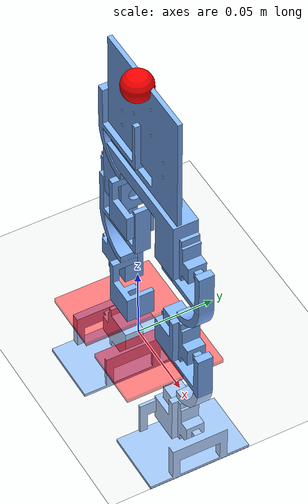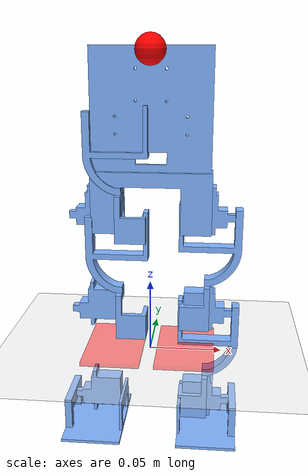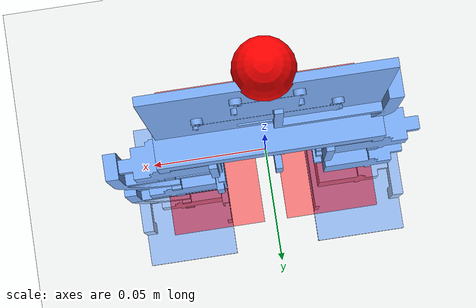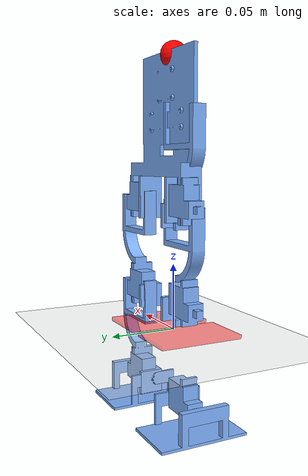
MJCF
<?xml version="1.0" ?>
<mujoco model="assemblyDerived_v9">
  <default>
    <mesh scale="0.001 0.001 0.001"/>
    <geom rgba="0.5 0.7 1.0 1" contype="0" conaffinity="0"/>
    <joint damping="0.005"/>
    <position kp="0.2" forcelimited="true" forcerange="-0.2 0.2"/>
  </default>

  <asset>
    <mesh file="meshes/derivedBody_v1_1.stl" name="derivedBody_v1_1_mesh"/>
    <mesh file="meshes/servo_v9_1.stl" name="servo_v9_1_mesh"/>
    <mesh file="meshes/derivedLeg_v1_1.stl" name="derivedLeg_v1_1_mesh"/>
    <mesh file="meshes/servo_v9_3.stl" name="servo_v9_3_mesh"/>
    <mesh file="meshes/derivedLeg_v1_2.stl" name="derivedLeg_v1_2_mesh"/>
    <mesh file="meshes/servo_v9_5.stl" name="servo_v9_5_mesh"/>
    <mesh file="meshes/derivedFoot_v2_1.stl" name="derivedFoot_v2_1_mesh"/>
    <mesh file="meshes/servo_v9_2.stl" name="servo_v9_2_mesh"/>
    <mesh file="meshes/derivedLeg_v1(Mirror)_1.stl" name="derivedLeg_v1(Mirror)_1_mesh"/>
    <mesh file="meshes/servo_v9_4.stl" name="servo_v9_4_mesh"/>
    <mesh file="meshes/derivedLeg_v1(Mirror)_2.stl" name="derivedLeg_v1(Mirror)_2_mesh"/>
    <mesh file="meshes/servo_v9_6.stl" name="servo_v9_6_mesh"/>
    <mesh file="meshes/derivedFoot_v2(Mirror)_1.stl" name="derivedFoot_v2(Mirror)_1_mesh"/>
  </asset>

  <actuator>
    <position name="derivedLeg_v1_1Revolute_3" joint="derivedLeg_v1_1Revolute_3" ctrllimited="true" ctrlrange="-1.57 1.57"/>
    <position name="derivedLeg_v1_2Revolute_7" joint="derivedLeg_v1_2Revolute_7" ctrllimited="true" ctrlrange="-1.57 1.57"/>
    <position name="derivedFoot_v2_1Revolute_11" joint="derivedFoot_v2_1Revolute_11" ctrllimited="true" ctrlrange="-1.57 1.57"/>
    <position name="derivedLeg_v1(Mirror)_1Revolute_4" joint="derivedLeg_v1(Mirror)_1Revolute_4" ctrllimited="true" ctrlrange="-1.57 1.57"/>
    <position name="derivedLeg_v1(Mirror)_2Revolute_8" joint="derivedLeg_v1(Mirror)_2Revolute_8" ctrllimited="true" ctrlrange="-1.57 1.57"/>
    <position name="derivedFoot_v2(Mirror)_1Revolute_12" joint="derivedFoot_v2(Mirror)_1Revolute_12" ctrllimited="true" ctrlrange="-1.57 1.57"/>
  </actuator>

  <sensor>
    <gyro name="gyro" site="imu_site"/>
    <accelerometer name="accel" site="imu_site"/>
    <framequat name="orientation" objtype="site" objname="imu_site"/>
  </sensor>

  <worldbody>
    <geom name="floor" size="0 0 .05" type="plane" condim="4" rgba="0.9 0.9 0.9 1" contype="1" conaffinity="1"/>
    <light mode="targetbodycom" target="body" diffuse=".8 .8 .8" specular="0.3 0.3 0.3" pos="0 -6 4" cutoff="30"/>

    <body name="body" pos="0 0 0.084">
      <freejoint name="root"/>
      <site name="imu_site" pos="0 0 0.12" size="0.01" rgba="1 0 0 1"/>
      <geom density="248" type="mesh" mesh="derivedBody_v1_1_mesh"/>

      <body name="servo_v9_1">
        <geom mass="0.013" type="mesh" mesh="servo_v9_1_mesh"/>
        <body name="derivedLeg_v1_1">
          <joint axis="1 0 0" name="derivedLeg_v1_1Revolute_3" type="hinge" pos="-0.0399 0.0043 0.0756" range="-1.57 1.57"/>
          <geom density="248" type="mesh" mesh="derivedLeg_v1_1_mesh"/>
          <body name="servo_v9_3">
            <geom mass="0.013" type="mesh" mesh="servo_v9_3_mesh"/>
            <body name="derivedLeg_v1_2">
              <joint axis="1 0 0" name="derivedLeg_v1_2Revolute_7" type="hinge" pos="-0.0399 0.0043 0.0056" range="-1.57 1.57"/>
              <geom density="248" type="mesh" mesh="derivedLeg_v1_2_mesh"/>
              <body name="servo_v9_5">
                <geom mass="0.013" type="mesh" mesh="servo_v9_5_mesh"/>
                <body name="derivedFoot_v2_1">
                  <joint axis="1 0 0" name="derivedFoot_v2_1Revolute_11" type="hinge" pos="-0.0399 0.0043 -0.0644" range="-1.57 1.57"/>
                  <geom density="248" type="mesh" mesh="derivedFoot_v2_1_mesh"/>
                  <geom type="box"  pos="-0.025 0.0 -0.0829" size="0.02 0.032 0.0015" rgba="1 0 0 0.5" contype="1" conaffinity="1" density="248" friction="1 0.2 0.001" solref="0.02 1"/>
                </body>
              </body>
            </body>
          </body>
        </body>
      </body>

      <body name="servo_v9_2">
        <geom mass="0.013" type="mesh" mesh="servo_v9_2_mesh"/>
        <body name="derivedLeg_v1(Mirror)_1">
          <joint axis="1 0 0" name="derivedLeg_v1(Mirror)_1Revolute_4" type="hinge" pos="0.0399 0.0043 0.0756" range="-1.57 1.57"/>
          <geom density="248" type="mesh" mesh="derivedLeg_v1(Mirror)_1_mesh"/>
          <body name="servo_v9_4">
            <geom mass="0.013" type="mesh" mesh="servo_v9_4_mesh"/>
            <body name="derivedLeg_v1(Mirror)_2">
              <joint axis="1 0 0" name="derivedLeg_v1(Mirror)_2Revolute_8" type="hinge" pos="0.0399 0.0043 0.0056" range="-1.57 1.57"/>
              <geom density="248" type="mesh" mesh="derivedLeg_v1(Mirror)_2_mesh"/>
              <body name="servo_v9_6">
                <geom mass="0.013" type="mesh" mesh="servo_v9_6_mesh"/>
                <body name="derivedFoot_v2(Mirror)_1">
                  <joint axis="1 0 0" name="derivedFoot_v2(Mirror)_1Revolute_12" type="hinge" pos="0.0399 0.0043 -0.0644" range="-1.57 1.57"/>
                  <geom density="248" type="mesh" mesh="derivedFoot_v2(Mirror)_1_mesh"/>
                  <geom type="box" pos="0.025 0.0 -0.0829" size="0.02 0.032 0.0015" rgba="1 0 0 0.5" contype="1" conaffinity="1" density="248" friction="1 0.2 0.001" solref="0.02 1"/>
                </body>
              </body>
            </body>
          </body>
        </body>
      </body>
    </body>

    <camera name="track" mode="trackcom" pos="0 -1 0.3" xyaxes="1 0 0 0 0.2 1" target="body"/>
  </worldbody>
</mujoco>
